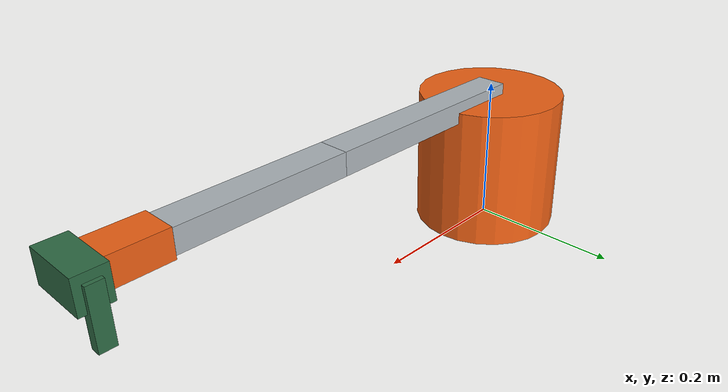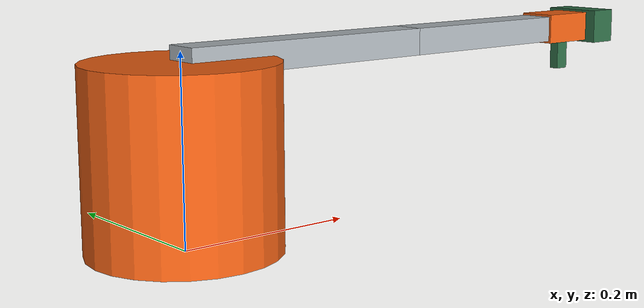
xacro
<?xml version="1.0"?>
<!-- Geometry generated from cad/config/parameters.py on 2026-08-20.
     Units: SI. Status: UNVERIFIED / PHYSICAL VALIDATION REQUIRED. -->
<robot xmlns:xacro="http://www.ros.org/wiki/xacro" name="figbot_v0">
  <xacro:property name="upper" value="0.300"/>
  <xacro:property name="fore" value="0.220"/>
  <xacro:property name="tool" value="0.085"/>
  <xacro:property name="base_height" value="0.190"/>
  <xacro:property name="tube_y" value="0.040"/>
  <xacro:property name="tube_z" value="0.030"/>

  <material name="figbot_orange"><color rgba="0.94 0.38 0.08 1"/></material>
  <material name="aluminium"><color rgba="0.68 0.71 0.73 1"/></material>
  <material name="soft_gripper"><color rgba="0.18 0.42 0.27 1"/></material>

  <xacro:macro name="inertial_box" params="mass x y z">
    <inertial>
      <origin xyz="${x/2} 0 0"/>
      <mass value="${mass}"/>
      <inertia ixx="${mass*(y*y+z*z)/12}" ixy="0" ixz="0" iyy="${mass*(x*x+z*z)/12}" iyz="0" izz="${mass*(x*x+y*y)/12}"/>
    </inertial>
  </xacro:macro>

  <link name="base_link">
    <visual><origin xyz="0 0 ${base_height/2}"/><geometry><cylinder radius="0.10" length="${base_height}"/></geometry><material name="figbot_orange"/></visual>
    <collision><origin xyz="0 0 ${base_height/2}"/><geometry><cylinder radius="0.10" length="${base_height}"/></geometry></collision>
    <inertial><origin xyz="0 0 ${base_height/2}"/><mass value="2.4"/><inertia ixx="0.028" ixy="0" ixz="0" iyy="0.028" iyz="0" izz="0.012"/></inertial>
  </link>

  <link name="shoulder_yaw"><inertial><mass value="0.15"/><inertia ixx="0.0003" ixy="0" ixz="0" iyy="0.0003" iyz="0" izz="0.0003"/></inertial></link>
  <joint name="J1" type="revolute">
    <parent link="base_link"/><child link="shoulder_yaw"/><origin xyz="0 0 ${base_height}"/><axis xyz="0 0 1"/>
    <limit lower="-2.007129" upper="2.007129" velocity="3.141593" effort="20"/>
  </joint>

  <link name="upper_arm">
    <visual><origin xyz="${upper/2} 0 0"/><geometry><box size="${upper} ${tube_y} ${tube_z}"/></geometry><material name="aluminium"/></visual>
    <collision><origin xyz="${upper/2} 0 0"/><geometry><box size="${upper} ${tube_y} ${tube_z}"/></geometry></collision>
    <xacro:inertial_box mass="0.149" x="${upper}" y="${tube_y}" z="${tube_z}"/>
  </link>
  <joint name="J2" type="revolute">
    <parent link="shoulder_yaw"/><child link="upper_arm"/><axis xyz="0 -1 0"/>
    <limit lower="-1.396263" upper="1.745329" velocity="2.094395" effort="30"/>
  </joint>

  <link name="forearm">
    <visual><origin xyz="${fore/2} 0 0"/><geometry><box size="${fore} ${tube_y} ${tube_z}"/></geometry><material name="aluminium"/></visual>
    <collision><origin xyz="${fore/2} 0 0"/><geometry><box size="${fore} ${tube_y} ${tube_z}"/></geometry></collision>
    <xacro:inertial_box mass="0.109" x="${fore}" y="${tube_y}" z="${tube_z}"/>
  </link>
  <joint name="J3" type="revolute">
    <parent link="upper_arm"/><child link="forearm"/><origin xyz="${upper} 0 0"/><axis xyz="0 -1 0"/>
    <limit lower="-2.356194" upper="2.356194" velocity="3.141593" effort="20"/>
  </joint>

  <link name="wrist_tool">
    <visual><origin xyz="${tool/2} 0 0"/><geometry><box size="${tool} 0.045 0.035"/></geometry><material name="figbot_orange"/></visual>
    <collision><origin xyz="${tool/2} 0 0"/><geometry><box size="${tool} 0.045 0.035"/></geometry></collision>
    <xacro:inertial_box mass="0.12" x="${tool}" y="0.045" z="0.035"/>
  </link>
  <joint name="J4" type="revolute">
    <parent link="forearm"/><child link="wrist_tool"/><origin xyz="${fore} 0 0"/><axis xyz="0 -1 0"/>
    <limit lower="-1.745329" upper="1.745329" velocity="3.141593" effort="8"/>
  </joint>

  <link name="gripper_body">
    <visual><geometry><box size="0.035 0.072 0.040"/></geometry><material name="soft_gripper"/></visual>
    <collision><geometry><box size="0.035 0.072 0.040"/></geometry></collision>
    <inertial><mass value="0.20"/><inertia ixx="0.00012" ixy="0" ixz="0" iyy="0.00008" iyz="0" izz="0.00012"/></inertial>
  </link>
  <joint name="tool_mount" type="fixed"><parent link="wrist_tool"/><child link="gripper_body"/><origin xyz="${tool} 0 0"/></joint>

  <link name="gripper_finger">
    <visual><origin xyz="0 0.035 -0.025"/><geometry><box size="0.018 0.012 0.070"/></geometry><material name="soft_gripper"/></visual>
    <collision><origin xyz="0 0.035 -0.025"/><geometry><box size="0.018 0.012 0.070"/></geometry></collision>
    <inertial><mass value="0.02"/><inertia ixx="0.00001" ixy="0" ixz="0" iyy="0.00001" iyz="0" izz="0.000003"/></inertial>
  </link>
  <joint name="G1" type="prismatic">
    <parent link="gripper_body"/><child link="gripper_finger"/><axis xyz="0 1 0"/>
    <limit lower="0" upper="0.045" velocity="0.12" effort="8"/>
  </joint>

  <ros2_control name="FigbotV0System" type="system">
    <!-- Mock hardware supports controller bring-up without claiming a real driver. -->
    <hardware><plugin>mock_components/GenericSystem</plugin></hardware>
    <xacro:macro name="controlled_joint" params="name initial">
      <joint name="${name}">
        <command_interface name="position"/>
        <state_interface name="position"><param name="initial_value">${initial}</param></state_interface>
        <state_interface name="velocity"/>
      </joint>
    </xacro:macro>
    <xacro:controlled_joint name="J1" initial="0"/>
    <xacro:controlled_joint name="J2" initial="0"/>
    <xacro:controlled_joint name="J3" initial="0"/>
    <xacro:controlled_joint name="J4" initial="0"/>
    <xacro:controlled_joint name="G1" initial="0"/>
  </ros2_control>
</robot>
